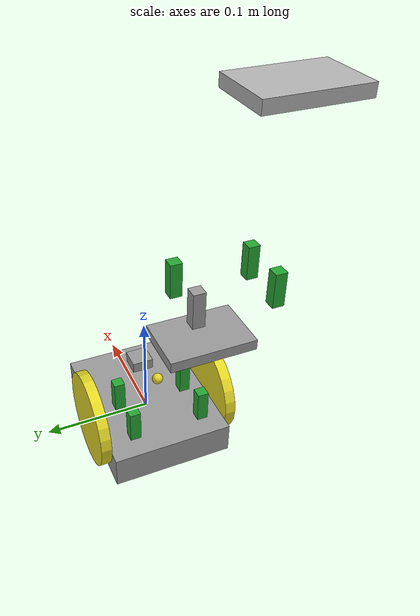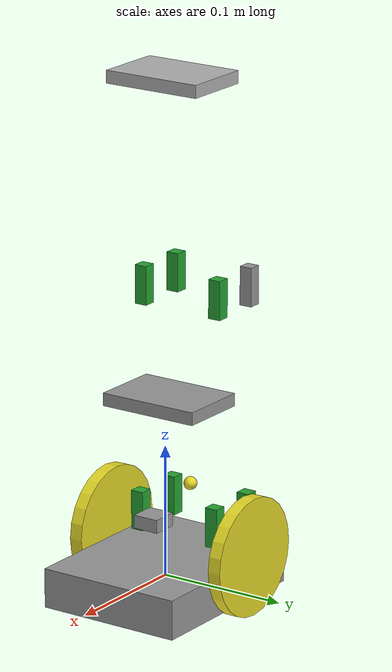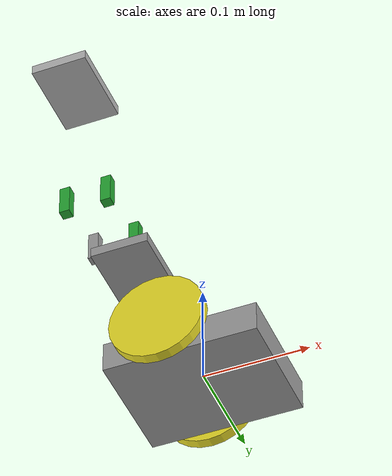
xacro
<?xml version="1.0"?>
<!-- DESCRIPTION OF THE TWO WHEELED ROBOT -->
<!-- Made by Berat Tezer   -  February 24 -->

<robot name="two_wheeled_drive_robot" xmlns:xacro="http://www.ros.org/wiki/xacro">
    <!-- Body Dimensions -->
    <xacro:property name="body_link_x_dim" value="0.144"/>
    <xacro:property name="body_link_y_dim" value="0.113"/>
    <xacro:property name="body_link_z_dim" value="0.030"/>

    <!-- Wheel Dimensions -->
    <xacro:property name="wheel_link_radius" value="0.045"/>
    <xacro:property name="wheel_link_length" value="0.01"/>
    <xacro:property name="wheel_link_z_location" value="0.0225"/>

    <!-- Upper Body Dimensions -->
    <xacro:property name="upper_body_link_x_dim" value="0.055"/>
    <xacro:property name="upper_body_link_y_dim" value="0.080"/>
    <xacro:property name="upper_body_link_z_dim" value="0.010"/>

    <!-- Upper Body Support Dimensions -->
    <xacro:property name="upper_body_support_link_x_dim" value="0.010"/>
    <xacro:property name="upper_body_support_link_y_dim" value="0.010"/>
    <xacro:property name="upper_body_support_link_z_dim" value="0.030"/>

    <!-- Support Wheel Body Dimension -->
    <xacro:property name="support_wheel_body_link_x_dim" value="0.020"/>
    <xacro:property name="support_wheel_body_link_y_dim" value="0.020"/>
    <xacro:property name="support_wheel_body_link_z_dim" value="0.010"/>

    <!-- Support Wheel Dimension -->
    <xacro:property name="support_wheel_link_radius" value="0.0050"/>
    <xacro:property name="support_wheel_link_length" value="0.1"/>
    <xacro:property name="support_wheel_link_z_location" value="0.010"/>

    <!-- Material Density -->
    <xacro:property name="body_density" value="2710.0"/>
    <xacro:property name="wheel_density" value="2710.0"/>

    <!-- Pi constant -->
    <xacro:property name="pi_const" value="3.14159265"/>

    <!-- Robot body and wheel mass -->
    <xacro:property name="body_mass" value="${body_density*body_link_x_dim*body_link_y_dim*body_link_z_dim}"/>
    <xacro:property name="wheel_mass" value="${wheel_density*pi_const*wheel_link_radius*wheel_link_radius*wheel_link_length}"/>
    <xacro:property name="upper_body_mass" value="${body_density*upper_body_link_x_dim*upper_body_link_y_dim*upper_body_link_z_dim}"/>
    <xacro:property name="upper_body_support_mass" value="${body_mass*upper_body_support_link_x_dim*upper_body_support_link_y_dim*upper_body_support_link_z_dim}"/>
    <xacro:property name="support_wheel_body_mass" value="${body_mass*support_wheel_body_link_x_dim*support_wheel_body_link_y_dim*support_wheel_body_link_z_dim}"/>
    <xacro:property name="support_wheel_mass" value="${wheel_density*pi_const*(support_wheel_link_radius/2.0)*(support_wheel_link_radius/2.0)*support_wheel_link_length}"/>

    <!-- Moments of inertia of the wheel -->
    <xacro:property name="Iz_wheel" value="${0.5*wheel_mass*wheel_link_radius*wheel_link_radius}"/>
    <xacro:property name="I_wheel" value="${(1.0/12.0)*wheel_mass*(3.0*wheel_link_radius/wheel_link_radius+wheel_link_length*wheel_link_length)}"/>

    <!-- This macro defines the complete inertial section of the wheel -->
    <!-- It is used later in cod -->
    <xacro:macro name="inertia_wheel">
        <inertial>
            <origin xyz="0 0 0" rpy="0 0 0"/>
            <mass value="${wheel_mass}"/>
            <inertia ixx="${I_wheel}" ixy="0.0" ixz="0.0" iyy="${I_wheel}" iyz="0.0" izz="${Iz_wheel}"/>
        </inertial>
    </xacro:macro>

    <xacro:macro name="inertia_upper_body_support">
        <inertial>
            <origin xyz="0 0 0" rpy="0 0 0"/>
            <mass value="${upper_body_support_mass}"/>
            <inertia ixx="${(1.0/12.0)*upper_body_support_mass*(upper_body_support_link_y_dim*upper_body_support_link_y_dim+upper_body_support_link_z_dim*upper_body_support_link_z_dim)}" ixy="0" ixz="0" iyy="${(1.0/12.0)*upper_body_support_mass*(upper_body_support_link_x_dim*upper_body_support_link_x_dim+upper_body_support_link_z_dim*upper_body_support_link_z_dim)}" iyz="0" izz="${(1.0/12.0)*upper_body_support_mass*(upper_body_support_link_x_dim*upper_body_support_link_x_dim+upper_body_support_link_y_dim*upper_body_support_link_y_dim)}"/>
        </inertial>
    </xacro:macro>

    <xacro:macro name="inertia_upper_body">
        <inertial>
            <origin xyz="0 0 0" rpy="0 0 0"/>
            <mass value="${upper_body_mass}"/>
            <inertia ixx="${(1.0/12.0)*upper_body_mass*(upper_body_link_y_dim*upper_body_link_y_dim+upper_body_link_z_dim*upper_body_link_z_dim)}" ixy="0" ixz="0" iyy="${(1.0/12.0)*upper_body_mass*(upper_body_link_x_dim*upper_body_link_x_dim+upper_body_link_z_dim*upper_body_link_z_dim)}" iyz="0" izz="${(1.0/12.0)*upper_body_mass*(upper_body_link_x_dim*upper_body_link_x_dim+upper_body_link_y_dim*upper_body_link_y_dim)}"/>
        </inertial>
    </xacro:macro>

    <!-- Over here we include the file that defines extra Gazebo options -->
    <!-- and motion control driver -->
    <xacro:include filename="$(find robot_model_pkg)/urdf/robot.gazebo"/>

    <!-- Now we define Links and Joints -->

    <!-- In ROS, created objects calls by links -->
    <!-- Joints are coming meaning that connections between two different shapes -->
    <!-- We won't call these connections as links -->

    <!-- We need to have this link, otherwise Gazebo will complain -->
    <link name="base_link"></link>
    <joint name="base_joint" type="fixed">
        <parent link="base_link"/>
        <child link="body_link"/>
    </joint>

    <!-- Body of our robot -->

    <link name="body_link">
        <visual>
            <geometry>
                <box size="${body_link_x_dim} ${body_link_y_dim} ${body_link_z_dim}"/>
            </geometry>
        </visual>

        <collision>
            <geometry>
                <box size="${body_link_x_dim} ${body_link_y_dim} ${body_link_z_dim}"/>
            </geometry>
            <origin xyz="0.0 0.0 0.0" rpy="0.0 0.0 0.0"/>
        </collision>

        <inertial>
            <origin xyz="0.0 0.0 0.0" rpy="0.0 0.0 0.0"/>
            <mass value="${body_mass}"/>
            <inertia ixx="${(1.0/12.0)*body_mass*(body_link_y_dim*body_link_y_dim+body_link_z_dim*body_link_z_dim)}" ixy="0" ixz="0" iyy="${(1.0/12.0)*body_mass*(body_link_x_dim*body_link_x_dim+body_link_z_dim*body_link_z_dim)}" iyz="0" izz="${(1.0/12.0)*body_mass*(body_link_y_dim*body_link_y_dim+body_link_x_dim*body_link_x_dim)}"/>
        </inertial>
    </link>

    <!-- Wheels of our robot -->

    <!-- Right Wheel -->
    <joint name="wheel_right_joint" type="continuous">
        <parent link="body_link"/>
        <child link="wheel_right_link"/>
        <origin xyz="${-body_link_x_dim/2+1.2*wheel_link_radius} ${-body_link_y_dim/2-wheel_link_length/2} ${wheel_link_z_location}" rpy="0.0 0.0 0.0"/>
        <axis xyz="0.0 1.0 0.0"/>
        <limit lower="0.0" upper="0.0" effort="1000.0" velocity="1000.0"/>
        <dynamics damping="1.0" friction="1.0"/>
    </joint>

    <link name="wheel_right_link">
        <visual>
            <origin xyz="0.0 0.0 0.0" rpy="1.570795 0.0 0.0"/>
            <geometry>
                <cylinder radius="${wheel_link_radius}" length="${wheel_link_length}"/>
            </geometry>
        </visual>

        <collision>
            <origin xyz="0.0 0.0 0.0" rpy="1.570795 0.0 0.0"/>
            <geometry>
                <cylinder radius="${wheel_link_radius}" length="${wheel_link_length}"/>
            </geometry>
        </collision>

        <!-- Macro we defined before -->
        <xacro:inertia_wheel/>
    </link>

    <!-- Left Wheel -->
    <joint name="wheel_left_joint" type="continuous">
        <parent link="body_link"/>
        <child link="wheel_left_link"/>
        <origin xyz="${-body_link_x_dim/2+1.2*wheel_link_radius} ${body_link_y_dim/2+wheel_link_length/2} ${wheel_link_z_location}" rpy="0.0 0.0 0.0"/>
        <axis xyz="0.0 1.0 0.0"/>
        <limit lower="0.0" upper="0.0" effort="1000.0" velocity="1000.0"/>
        <dynamics damping="1.0" friction="1.0"/>
    </joint>

    <link name="wheel_left_link">
        <visual>
            <origin xyz="0.0 0.0 0.0" rpy="1.570795 0.0 0.0"/>
            <geometry>
                <cylinder radius="${wheel_link_radius}" length="${wheel_link_length}"/>
            </geometry>
        </visual>

        <collision>
            <origin xyz="0.0 0.0 0.0" rpy="1.570795 0.0 0.0"/>
            <geometry>
                <cylinder radius="${wheel_link_radius}" length="${wheel_link_length}"/>
            </geometry>
        </collision>

        <!-- Macro we defined before -->
        <xacro:inertia_wheel/>
    </link>

    <!-- Support Wheel Body -->
    <joint name="support_wheel_body_joint" type="fixed">
        <parent link="body_link"/>
        <child link="support_wheel_body_link"/>
        <origin xyz="0.015 0.0 0.047" rpy="0.0 0.0 0.0"/>
        <axis xyz="0.0 0.0 0.0"/>
        <limit lower="0.0" upper="0.0" effort="0.0" velocity="0.0"/>
        <dynamics damping="0.0" friction="0.0"/>
    </joint>

    <link name="support_wheel_body_link">
        <visual>
            <origin xyz="0.0 0.0 0.0" rpy="0.0 0.0 0.0"/>
            <geometry>
                <box size="0.020 0.020 0.010"/>
            </geometry>
        </visual>

        <collision>
            <origin xyz="0.0 0.0 0.0" rpy="0.0 0.0 0.0"/>
            <geometry>
                <box size="0.020 0.020 0.010"/>
            </geometry>
        </collision>
    </link>

    <!-- Support Wheel -->
    <joint name="support_wheel_joint" type="continuous">
        <parent link="support_wheel_body_link"/>
        <child link="support_wheel_link"/>
        <origin xyz="-0.047 0.0 0.015" rpy="0.0 0.0 0.0"/>
        <axis xyz="0.0 0.0 0.0"/>
        <limit lower="0.0" upper="0.0" effort="1000.0" velocity="1000.0"/>
        <dynamics damping="1.0" friction="1.0"/>
    </joint>

    <link name="support_wheel_link">
        <visual>
            <origin xyz="0.0 0.0 0.0" rpy="1.2345 0.56789 0.392699"/>
            <geometry>
                <sphere radius="${support_wheel_link_radius}"/>
            </geometry>
        </visual>

        <collision>
            <origin xyz="0.0 0.0 0.0" rpy="1.2345 0.56789 0.392699"/>
            <geometry>
                <sphere radius="${support_wheel_link_radius}"/>
            </geometry>
        </collision>

        <inertial>
            <origin xyz="0.0 0.0 0.0" rpy="0.0 0.0 0.0"/>
            <mass value="${body_mass}"/>
            <inertia ixx="${(2.0/5.0)*support_wheel_mass*support_wheel_link_radius*support_wheel_link_radius}" ixy="0" ixz="0" iyy="${(2.0/5.0)*support_wheel_mass*0.005*0.005}" iyz="0" izz="${(2.0/5.0)*support_wheel_mass*0.005*0.005}"/>
        </inertial>
    </link>

    <!-- First four support sticks of our robot -->

    <!-- Left front -->
    <joint name="upper_body_support_lf_joint" type="fixed">
        <parent link="body_link"/>
        <child link="upper_body_support_lf_link"/>
        <origin xyz="-0.0155 -0.033 0.04" rpy="0.0 0.0 0.0"/>
        <axis xyz="0.0 0.0 0.0"/>
        <limit lower="0.0" upper="0.0" effort="0.0" velocity="0.0"/>
    </joint>

    <link name="upper_body_support_lf_link">
        <visual>
            <origin xyz="0.0 0.0 0.0" rpy="0.0 0.0 0.0"/>
            <geometry>
                <box size="0.01 0.01 0.03"/>
            </geometry>
        </visual>

        <collision>
            <origin xyz="0.0 0.0 0.0" rpy="0.0 0.0 0.0"/>
            <geometry>
                <box size="0.01 0.01 0.03"/>
            </geometry>
        </collision>

        <!-- Macro we defined before -->
        <xacro:inertia_upper_body_support/>
    </link>

    <!-- Left back -->
    <joint name="upper_body_support_lb_joint" type="fixed">
        <parent link="body_link"/>
        <child link="upper_body_support_lb_link"/>
        <origin xyz="-0.0565 -0.033 0.04" rpy="0.0 0.0 0.0"/>
        <axis xyz="0.0 0.0 0.0"/>
        <limit lower="0.0" upper="0.0" effort="0.0" velocity="0.0"/>
    </joint>

    <link name="upper_body_support_lb_link">
        <visual>
            <origin xyz="0.0 0.0 0.0" rpy="0.0 0.0 0.0"/>
            <geometry>
                <box size="0.01 0.01 0.03"/>
            </geometry>
        </visual>

        <collision>
            <origin xyz="0.0 0.0 0.0" rpy="0.0 0.0 0.0"/>
            <geometry>
                <box size="0.01 0.01 0.03"/>
            </geometry>
        </collision>

        <!-- Macro we defined before -->
        <xacro:inertia_upper_body_support/>
    </link>

    <!-- Right front -->
    <joint name="upper_body_support_rf_joint" type="fixed">
        <parent link="body_link"/>
        <child link="upper_body_support_rf_link"/>
        <origin xyz="-0.0155 0.033 0.04" rpy="0.0 0.0 0.0"/>
        <axis xyz="0.0 0.0 0.0"/>
        <limit lower="0.0" upper="0.0" effort="0.0" velocity="0.0"/>
    </joint>

    <link name="upper_body_support_rf_link">
        <visual>
            <origin xyz="0.0 0.0 0.0" rpy="0.0 0.0 0.0"/>
            <geometry>
                <box size="0.01 0.01 0.03"/>
            </geometry>
        </visual>

        <collision>
            <origin xyz="0.0 0.0 0.0" rpy="0.0 0.0 0.0"/>
            <geometry>
                <box size="0.01 0.01 0.03"/>
            </geometry>
        </collision>

        <!-- Macro we defined before -->
        <xacro:inertia_upper_body_support/>
    </link>

    <!-- Right back -->
    <joint name="upper_body_support_rb_joint" type="fixed">
        <parent link="body_link"/>
        <child link="upper_body_support_rb_link"/>
        <origin xyz="-0.0565 0.033 0.04" rpy="0.0 0.0 0.0"/>
        <axis xyz="0.0 0.0 0.0"/>
        <limit lower="0.0" upper="0.0" effort="0.0" velocity="0.0"/>
    </joint>

    <link name="upper_body_support_rb_link">
        <visual>
            <origin xyz="0.0 0.0 0.0" rpy="0.0 0.0 0.0"/>
            <geometry>
                <box size="0.01 0.01 0.03"/>
            </geometry>
        </visual>

        <collision>
            <origin xyz="0.0 0.0 0.0" rpy="0.0 0.0 0.0"/>
            <geometry>
                <box size="0.01 0.01 0.03"/>
            </geometry>
        </collision>

        <!-- Macro we defined before -->
        <xacro:inertia_upper_body_support/>
    </link>

    <!-- First upper body of our robot -->

    <joint name="upper_body_1_joint" type="fixed">
        <parent link="upper_body_support_lf_link"/>
        <child link="upper_body_1_link"/>
        <origin xyz="-0.036 0.0 0.075" rpy="0.0 0.0 0.0"/>
        <axis xyz="0.0 0.0 0.0"/>
        <limit lower="0.0" upper="0.0" effort="0.0" velocity="0.0"/>
    </joint>

    <link name="upper_body_1_link">
        <visual>
            <origin xyz="0.0 0.0 0.0" rpy="0.0 0.0 0.0"/>
            <geometry>
                <box size="0.055 0.08 0.01"/>
            </geometry>
        </visual>

        <collision>
            <origin xyz="0.0 0.0 0.0" rpy="0.0 0.0 0.0"/>
            <geometry>
                <box size="0.055 0.08 0.01"/>
            </geometry>
        </collision>

        <!-- Macro we defined before -->
        <xacro:inertia_upper_body/>
    </link>

    <!-- Second four support sticks of our robot -->

    <!-- Left front -->
    <joint name="upper_body_support_lf_2_joint" type="fixed">
        <parent link="upper_body_1_link"/>
        <child link="upper_body_support_lf_2_link"/>
        <origin xyz="-0.0155 -0.033 0.08" rpy="0.0 0.0 0.0"/>
        <axis xyz="0.0 0.0 0.0"/>
        <limit lower="0.0" upper="0.0" effort="0.0" velocity="0.0"/>
    </joint>

    <link name="upper_body_support_lf_2_link">
        <visual>
            <origin xyz="0.0 0.0 0.0" rpy="0.0 0.0 0.0"/>
            <geometry>
                <box size="0.01 0.01 0.03"/>
            </geometry>
        </visual>

        <collision>
            <origin xyz="0.0 0.0 0.0" rpy="0.0 0.0 0.0"/>
            <geometry>
                <box size="0.01 0.01 0.03"/>
            </geometry>
        </collision>

        <!-- Macro we defined before -->
        <xacro:inertia_upper_body_support/>
    </link>

    <!-- Left back -->
    <joint name="upper_body_support_lb_2_joint" type="fixed">
        <parent link="upper_body_1_link"/>
        <child link="upper_body_support_lb_2_link"/>
        <origin xyz="-0.0565 -0.033 0.08" rpy="0.0 0.0 0.0"/>
        <axis xyz="0.0 0.0 0.0"/>
        <limit lower="0.0" upper="0.0" effort="0.0" velocity="0.0"/>
    </joint>

    <link name="upper_body_support_lb_2_link">
        <visual>
            <origin xyz="0.0 0.0 0.0" rpy="0.0 0.0 0.0"/>
            <geometry>
                <box size="0.01 0.01 0.03"/>
            </geometry>
        </visual>

        <collision>
            <origin xyz="0.0 0.0 0.0" rpy="0.0 0.0 0.0"/>
            <geometry>
                <box size="0.01 0.01 0.03"/>
            </geometry>
        </collision>

        <!-- Macro we defined before -->
        <xacro:inertia_upper_body_support/>
    </link>

    <!-- Right front -->
    <joint name="upper_body_support_rf_2_joint" type="fixed">
        <parent link="upper_body_1_link"/>
        <child link="upper_body_support_rf_2_link"/>
        <origin xyz="-0.0155 0.033 0.08" rpy="0.0 0.0 0.0"/>
        <axis xyz="0.0 0.0 0.0"/>
        <limit lower="0.0" upper="0.0" effort="0.0" velocity="0.0"/>
    </joint>

    <link name="upper_body_support_rf_2_link">
        <visual>
            <origin xyz="0.0 0.0 0.0" rpy="0.0 0.0 0.0"/>
            <geometry>
                <box size="0.01 0.01 0.03"/>
            </geometry>
        </visual>

        <collision>
            <origin xyz="0.0 0.0 0.0" rpy="0.0 0.0 0.0"/>
            <geometry>
                <box size="0.01 0.01 0.03"/>
            </geometry>
        </collision>

        <!-- Macro we defined before -->
        <xacro:inertia_upper_body_support/>
    </link>

    <!-- Right back -->
    <joint name="upper_body_support_rb_2_joint" type="fixed">
        <parent link="upper_body_1_link"/>
        <child link="upper_body_support_rb_2_link"/>
        <origin xyz="-0.0565 0.033 0.08" rpy="0.0 0.0 0.0"/>
        <axis xyz="0.0 0.0 0.0"/>
        <limit lower="0.0" upper="0.0" effort="0.0" velocity="0.0"/>
    </joint>

    <link name="upper_body_support_rb_2_link">
        <visual>
            <origin xyz="0.0 0.0 0.0" rpy="0.0 0.0 0.0"/>
            <geometry>
                <box size="0.01 0.01 0.03"/>
            </geometry>
        </visual>

        <collision>
            <origin xyz="0.0 0.0 0.0" rpy="0.0 0.0 0.0"/>
            <geometry>
                <box size="0.01 0.01 0.03"/>
            </geometry>
        </collision>

        <!-- Macro we defined before -->
        <xacro:inertia_upper_body_support/>
    </link>

    <!-- Second upper body of our robot -->

    <joint name="upper_body_2_joint" type="fixed">
        <parent link="upper_body_support_lf_2_link"/>
        <child link="upper_body_2_link"/>
        <origin xyz="-0.036 0.0 0.15" rpy="0.0 0.0 0.0"/>
        <axis xyz="0.0 0.0 0.0"/>
        <limit lower="0.0" upper="0.0" effort="0.0" velocity="0.0"/>
    </joint>

    <link name="upper_body_2_link">
        <visual>
            <origin xyz="0.0 0.0 0.0" rpy="0.0 0.0 0.0"/>
            <geometry>
                <box size="0.055 0.08 0.01"/>
            </geometry>
        </visual>

        <collision>
            <origin xyz="0.0 0.0 0.0" rpy="0.0 0.0 0.0"/>
            <geometry>
                <box size="0.055 0.08 0.01"/>
            </geometry>
        </collision>

        <!-- Macro we defined before -->
        <xacro:inertia_upper_body/>
    </link>

</robot>
